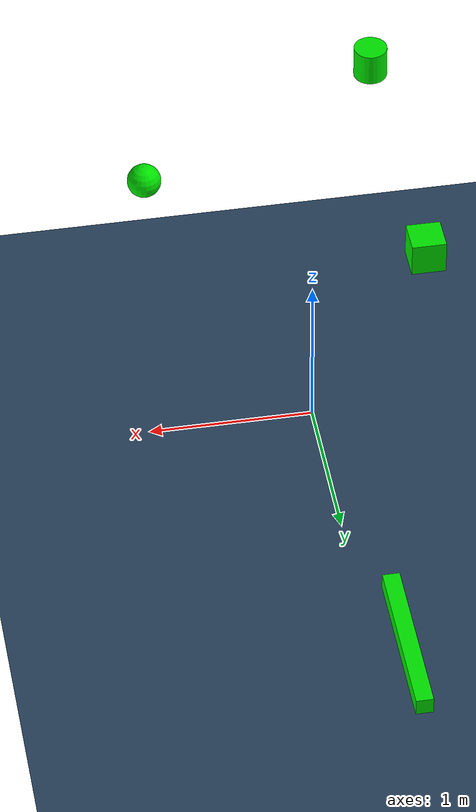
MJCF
<mujoco>
    <option timestep="0.005" integrator="RK4" gravity="0 0 -9.81">
        <flag sensornoise="disable" energy="enable" contact="enable" />
    </option>

    <asset>
        <texture name="grid" type="2d" builtin="checker" width="512" height="512" rgb1=".1 .2 .3"
            rgb2=".2 .3 .4" />
        <material name="grid" texture="grid" texrepeat="1 1" texuniform="true" reflectance=".2" />
    </asset>

    <worldbody>
        <geom name="floor" size="0 0 .05" type="plane" material="grid" />
        <light diffuse=".5 .5 .5" pos="0 0 5" dir="0 0 -1" />
    </worldbody>

    <worldbody>
        <body name="sphere" pos="1 0 2">
            <joint name="sphere_joint" type="ball" pos="-1 0 0" damping="0.5" />
            <geom type="sphere" size=".1 .1 .1" rgba="0 .9 0 1" mass="1" />
        </body>
        <body name="cube" pos="-0.5 0.866 2">
            <joint name="cube_joint" type="ball" pos="0.5 -0.866 0" damping="0.5" />
            <geom type="box" size=".1 .1 .1" rgba="0 .9 0 1" mass="1" />
        </body>
        <body name="cylinder" pos="-0.5 -0.866 2">
            <joint name="cylinder_joint" type="ball" pos="0.5 0.866 0" damping="0.5" />
            <geom type="cylinder" size=".1 .1 .1" rgba="0 .9 0 1" mass="1" />
        </body>
        <body name="slider" pos="0 3 1" >
            <joint type="slide" pos="0 0 0" damping="0.5" axis="0 1 0"/>
            <geom type="box" size=".05 .5 .05" rgba="0 .9 0 1" mass="10" />
        </body>
    </worldbody>
</mujoco>
